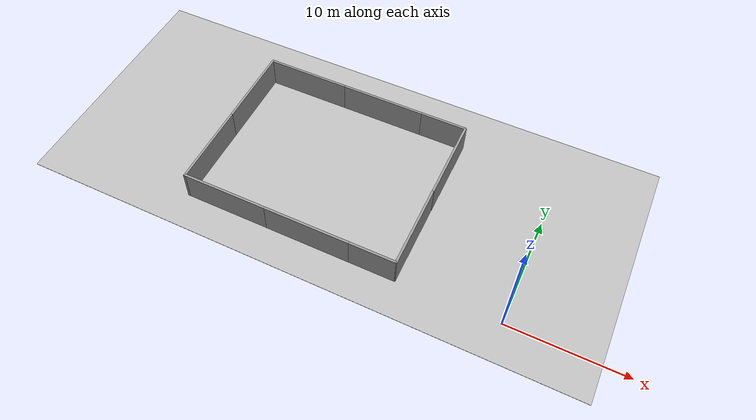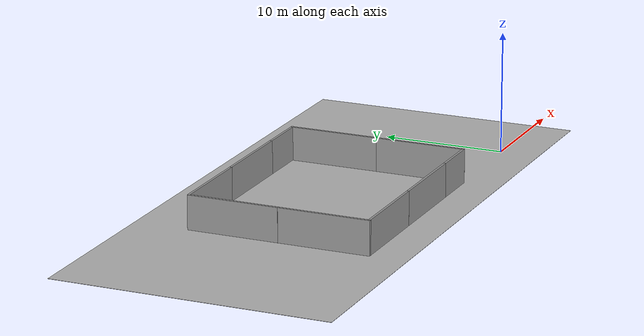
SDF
<sdf version="1.7">
 <world name="default">
  <physics type="ode">
   <real_time_update_rate>500</real_time_update_rate>
   <max_step_size>0.002</max_step_size>
   <real_time_factor>1</real_time_factor>
   <ode>
    <solver>
     <type>quick</type>
     <iters>300</iters>
     <precon_iters>0</precon_iters>
     <sor>1.4</sor>
     <use_dynamic_moi_rescaling>1</use_dynamic_moi_rescaling>
    </solver>
    <constraints>
     <cfm>0</cfm>
     <erp>0.8</erp>
     <contact_max_correcting_vel>2000</contact_max_correcting_vel>
     <contact_surface_layer>0.01</contact_surface_layer>
    </constraints>
   </ode>
  </physics>
  <scene>
   <ambient>0.8 0.8 0.8 1</ambient>
   <background>0.66 0.77 0.84 1</background>
   <grid>0</grid>
   <origin_visual>0</origin_visual>
   <shadows>1</shadows>
  </scene>
  <light name="directional_light" type="directional">
   <pose>0 0 -100 0 -0 0</pose>
   <diffuse>0.5 0.5 0.5 1</diffuse>
   <specular>0.1 0.1 0.1 1</specular>
   <direction>0.1 0.1 -0.9</direction>
   <attenuation>
    <range>20</range>
    <constant>0.5</constant>
    <linear>0.01</linear>
    <quadratic>0.001</quadratic>
   </attenuation>
   <cast_shadows>0</cast_shadows>
   <spot><inner_angle>0</inner_angle><outer_angle>0</outer_angle><falloff>0</falloff></spot>
  </light>
  <model name="ceiling">
   <pose>-2.97 11.25 3 3.14159 -0 3.14159</pose>
   <static>1</static>
   <link name="link">
    <visual name="visual">
     <geometry><plane><normal>0 0 1</normal><size>49.5 22.5</size></plane></geometry>
     <material>
      <script>
       <uri>model://media/materials/scripts/</uri>
       <uri>model://media/materials/textures/</uri>
       <name>ServiceSim/Ceiling</name>
      </script>
     </material>
    </visual>
   </link>
  </model>
  <model name="floor">
   <pose>-17 8 -0.001 0 -0 0</pose>
   <static>1</static>
   <link name="link">
    <visual name="visual">
     <geometry><plane><normal>0 0 1</normal><size>49.5 22.5</size></plane></geometry>
     <material>
      <script>
       <uri>model://media/materials/scripts/</uri>
       <uri>model://media/materials/textures/</uri>
       <name>ServiceSim/Hallway</name>
      </script>
     </material>
    </visual>
    <collision name="collision">
     <geometry><plane><normal>0 0 1</normal><size>49.5 22.5</size></plane></geometry>
     <surface><friction><ode><mu>1</mu><mu2>1</mu2></ode></friction></surface>
    </collision>
   </link>
  </model>
  <gravity>0 0 -9.8</gravity>
  <magnetic_field>6e-06 2.3e-05 -4.2e-05</magnetic_field>
  <atmosphere type="adiabatic"/>
  <spherical_coordinates>
   <surface_model>EARTH_WGS84</surface_model>
   <latitude_deg>0</latitude_deg>
   <longitude_deg>0</longitude_deg>
   <elevation>0</elevation>
   <heading_deg>0</heading_deg>
  </spherical_coordinates>
  <model name="grey_wall">
   <static>1</static>
   <link name="link">
    <pose>0 0 1.4 0 -0 0</pose>
    <collision name="collision"><geometry><box><size>7.5 0.2 2.8</size></box></geometry></collision>
    <visual name="visual">
     <cast_shadows>0</cast_shadows>
     <geometry><box><size>7.5 0.2 2.8</size></box></geometry>
     <material>
      <script>
       <uri>model://grey_wall/materials/scripts</uri>
       <uri>model://grey_wall/materials/textures</uri>
       <name>vrc/grey_wall</name>
      </script>
     </material>
    </visual>
   </link>
   <pose>-24.0525 -0.150006 0 0 -0 0</pose>
  </model>
  <model name="grey_wall_clone">
   <static>1</static>
   <link name="link">
    <pose>0 0 1.4 0 -0 0</pose>
    <collision name="collision"><geometry><box><size>7.5 0.2 2.8</size></box></geometry></collision>
    <visual name="visual">
     <cast_shadows>0</cast_shadows>
     <geometry><box><size>7.5 0.2 2.8</size></box></geometry>
     <material>
      <script>
       <uri>model://grey_wall/materials/scripts</uri>
       <uri>model://grey_wall/materials/textures</uri>
       <name>vrc/grey_wall</name>
      </script>
     </material>
    </visual>
   </link>
   <pose>-16.5505 -0.150786 0 0 -0 0</pose>
  </model>
  <model name="grey_wall_clone_0_clone_0">
   <static>1</static>
   <link name="link">
    <pose>0 0 1.4 0 -0 0</pose>
    <collision name="collision"><geometry><box><size>7.5 0.2 2.8</size></box></geometry></collision>
    <visual name="visual">
     <cast_shadows>0</cast_shadows>
     <geometry><box><size>7.5 0.2 2.8</size></box></geometry>
     <material>
      <script>
       <uri>model://grey_wall/materials/scripts</uri>
       <uri>model://grey_wall/materials/textures</uri>
       <name>vrc/grey_wall</name>
      </script>
     </material>
    </visual>
   </link>
   <pose>-27.7951 3.49573 0 0 -0 1.57</pose>
  </model>
  <model name="grey_wall_clone_0_clone">
   <static>1</static>
   <link name="link">
    <pose>0 0 1.4 0 -0 0</pose>
    <collision name="collision"><geometry><box><size>7.5 0.2 2.8</size></box></geometry></collision>
    <visual name="visual">
     <cast_shadows>0</cast_shadows>
     <geometry><box><size>7.5 0.2 2.8</size></box></geometry>
     <material>
      <script>
       <uri>model://grey_wall/materials/scripts</uri>
       <uri>model://grey_wall/materials/textures</uri>
       <name>vrc/grey_wall</name>
      </script>
     </material>
    </visual>
   </link>
   <pose>-27.7906 10.9996 0 0 -0 1.57</pose>
  </model>
  <model name="grey_wall_1_clone_0_clone">
   <static>1</static>
   <link name="link">
    <pose>0 0 1.4 0 -0 0</pose>
    <collision name="collision"><geometry><box><size>7.5 0.2 2.8</size></box></geometry></collision>
    <visual name="visual">
     <cast_shadows>0</cast_shadows>
     <geometry><box><size>7.5 0.2 2.8</size></box></geometry>
     <material>
      <script>
       <uri>model://grey_wall/materials/scripts</uri>
       <uri>model://grey_wall/materials/textures</uri>
       <name>vrc/grey_wall</name>
      </script>
     </material>
    </visual>
   </link>
   <pose>-24.1114 14.6546 0 0 -0 0</pose>
  </model>
  <model name="grey_wall_1_clone_0_clone_clone">
   <static>1</static>
   <link name="link">
    <pose>0 0 1.4 0 -0 0</pose>
    <collision name="collision"><geometry><box><size>7.5 0.2 2.8</size></box></geometry></collision>
    <visual name="visual">
     <cast_shadows>0</cast_shadows>
     <geometry><box><size>7.5 0.2 2.8</size></box></geometry>
     <material>
      <script>
       <uri>model://grey_wall/materials/scripts</uri>
       <uri>model://grey_wall/materials/textures</uri>
       <name>vrc/grey_wall</name>
      </script>
     </material>
    </visual>
   </link>
   <pose>-16.6066 14.6576 0 0 -0 0</pose>
  </model>
  <model name="grey_wall_1_clone_1_clone">
   <link name="link">
    <pose>0 0 1.4 0 -0 0</pose>
    <inertial>
     <mass>1</mass>
     <inertia><ixx>1</ixx><ixy>0</ixy><ixz>0</ixz><iyy>1</iyy><iyz>0</iyz><izz>1</izz></inertia>
    </inertial>
    <visual name="visual">
     <cast_shadows>0</cast_shadows>
     <geometry><box><size>4 0.2 2.8</size></box></geometry>
     <material>
      <script>
       <uri>model://grey_wall/materials/scripts</uri>
       <uri>model://grey_wall/materials/textures</uri>
       <name>vrc/grey_wall</name>
      </script>
      <shader type="pixel"><normal_map>__default__</normal_map></shader>
      <ambient>1 1 1 1</ambient>
      <diffuse>1 1 1 1</diffuse>
      <specular>0 0 0 1</specular>
      <emissive>0 0 0 1</emissive>
     </material>
    </visual>
    <collision name="collision">
     <geometry><box><size>4 0.2 2.8</size></box></geometry>
     <surface>
      <friction>
       <ode><mu>1</mu><mu2>1</mu2><fdir1>0 0 0</fdir1><slip1>0</slip1><slip2>0</slip2></ode>
       <torsional>
        <coefficient>1</coefficient>
        <patch_radius>0</patch_radius>
        <surface_radius>0</surface_radius>
        <use_patch_radius>1</use_patch_radius>
        <ode><slip>0</slip></ode>
       </torsional>
      </friction>
      <bounce><restitution_coefficient>0</restitution_coefficient><threshold>1e+06</threshold></bounce>
      <contact>
       <collide_without_contact>0</collide_without_contact>
       <collide_without_contact_bitmask>1</collide_without_contact_bitmask>
       <collide_bitmask>1</collide_bitmask>
       <ode>
        <soft_cfm>0</soft_cfm>
        <soft_erp>0.2</soft_erp>
        <kp>1e+13</kp>
        <kd>1</kd>
        <max_vel>0.01</max_vel>
        <min_depth>0</min_depth>
       </ode>
       <bullet>
        <split_impulse>1</split_impulse>
        <split_impulse_penetration_threshold>-0.01</split_impulse_penetration_threshold>
        <soft_cfm>0</soft_cfm>
        <soft_erp>0.2</soft_erp>
        <kp>1e+13</kp>
        <kd>1</kd>
       </bullet>
      </contact>
     </surface>
    </collision>
   </link>
   <static>1</static>
   <pose>-10.8724 14.659 0 0 -0 0</pose>
  </model>
  <model name="grey_wall_1_clone_1_clone_clone">
   <link name="link">
    <pose>0 0 1.4 0 -0 0</pose>
    <inertial>
     <mass>1</mass>
     <inertia><ixx>1</ixx><ixy>0</ixy><ixz>0</ixz><iyy>1</iyy><iyz>0</iyz><izz>1</izz></inertia>
    </inertial>
    <visual name="visual">
     <cast_shadows>0</cast_shadows>
     <geometry><box><size>4 0.2 2.8</size></box></geometry>
     <material>
      <script>
       <uri>model://grey_wall/materials/scripts</uri>
       <uri>model://grey_wall/materials/textures</uri>
       <name>vrc/grey_wall</name>
      </script>
      <shader type="pixel"><normal_map>__default__</normal_map></shader>
      <ambient>1 1 1 1</ambient>
      <diffuse>1 1 1 1</diffuse>
      <specular>0 0 0 1</specular>
      <emissive>0 0 0 1</emissive>
     </material>
    </visual>
    <collision name="collision">
     <geometry><box><size>4 0.2 2.8</size></box></geometry>
     <surface>
      <friction>
       <ode><mu>1</mu><mu2>1</mu2><fdir1>0 0 0</fdir1><slip1>0</slip1><slip2>0</slip2></ode>
       <torsional>
        <coefficient>1</coefficient>
        <patch_radius>0</patch_radius>
        <surface_radius>0</surface_radius>
        <use_patch_radius>1</use_patch_radius>
        <ode><slip>0</slip></ode>
       </torsional>
      </friction>
      <bounce><restitution_coefficient>0</restitution_coefficient><threshold>1e+06</threshold></bounce>
      <contact>
       <collide_without_contact>0</collide_without_contact>
       <collide_without_contact_bitmask>1</collide_without_contact_bitmask>
       <collide_bitmask>1</collide_bitmask>
       <ode>
        <soft_cfm>0</soft_cfm>
        <soft_erp>0.2</soft_erp>
        <kp>1e+13</kp>
        <kd>1</kd>
        <max_vel>0.01</max_vel>
        <min_depth>0</min_depth>
       </ode>
       <bullet>
        <split_impulse>1</split_impulse>
        <split_impulse_penetration_threshold>-0.01</split_impulse_penetration_threshold>
        <soft_cfm>0</soft_cfm>
        <soft_erp>0.2</soft_erp>
        <kp>1e+13</kp>
        <kd>1</kd>
       </bullet>
      </contact>
     </surface>
    </collision>
   </link>
   <static>1</static>
   <pose>-10.7974 -0.148693 0 0 -0 0</pose>
  </model>
  <model name="grey_wall_clone_0_clone_clone_0">
   <static>1</static>
   <link name="link">
    <pose>0 0 1.4 0 -0 0</pose>
    <collision name="collision"><geometry><box><size>7.5 0.2 2.8</size></box></geometry></collision>
    <visual name="visual">
     <cast_shadows>0</cast_shadows>
     <geometry><box><size>7.5 0.2 2.8</size></box></geometry>
     <material>
      <script>
       <uri>model://grey_wall/materials/scripts</uri>
       <uri>model://grey_wall/materials/textures</uri>
       <name>vrc/grey_wall</name>
      </script>
     </material>
    </visual>
   </link>
   <pose>-8.79771 11.0062 0 0 -0 1.57</pose>
  </model>
  <model name="grey_wall_clone_0_clone_clone_0_clone">
   <static>1</static>
   <link name="link">
    <pose>0 0 1.4 0 -0 0</pose>
    <collision name="collision"><geometry><box><size>7.5 0.2 2.8</size></box></geometry></collision>
    <visual name="visual">
     <cast_shadows>0</cast_shadows>
     <geometry><box><size>7.5 0.2 2.8</size></box></geometry>
     <material>
      <script>
       <uri>model://grey_wall/materials/scripts</uri>
       <uri>model://grey_wall/materials/textures</uri>
       <name>vrc/grey_wall</name>
      </script>
     </material>
    </visual>
   </link>
   <pose>-8.81357 3.53095 0 0 -0 1.57</pose>
  </model>
 </world>
</sdf>
